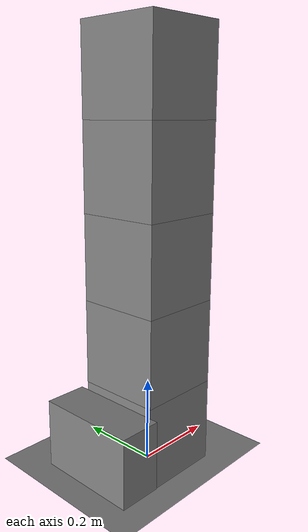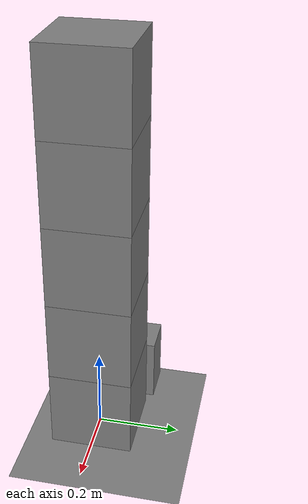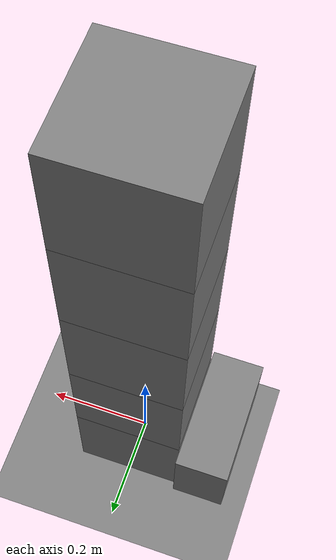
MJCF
<mujoco model="stack_fixture">
  <option timestep="0.002"/>
  <worldbody>
    <geom name="floor" type="plane" size="6 6 0.1" friction="0.6 0.005 0.0001"/>
    <body name="block1" pos="0 0 0.100">
      <freejoint/>
      <geom name="block1" type="box" size="0.1 0.1 0.1" mass="0.5" friction="0.6 0.005 0.0001"/>
    </body>
    <body name="block2" pos="0 0 0.300">
      <freejoint/>
      <geom name="block2" type="box" size="0.1 0.1 0.1" mass="0.5" friction="0.6 0.005 0.0001"/>
    </body>
    <body name="block3" pos="0 0 0.500">
      <freejoint/>
      <geom name="block3" type="box" size="0.1 0.1 0.1" mass="0.5" friction="0.6 0.005 0.0001"/>
    </body>
    <body name="block4" pos="0 0 0.700">
      <freejoint/>
      <geom name="block4" type="box" size="0.1 0.1 0.1" mass="0.5" friction="0.6 0.005 0.0001"/>
    </body>
    <body name="block5" pos="0 0 0.900">
      <freejoint/>
      <geom name="block5" type="box" size="0.1 0.1 0.1" mass="0.5" friction="0.6 0.005 0.0001"/>
    </body>
    <body name="pusher" pos="-0.1505 0 0.1">
      <joint name="pusher_slide" type="slide" axis="1 0 0" limited="true" range="0 0.6"/>
      <geom name="pusher" type="box" size="0.05 0.12 0.08" mass="1.0" friction="0.6 0.005 0.0001"/>
    </body>
  </worldbody>
  <actuator>
    <motor name="push" joint="pusher_slide" gear="1" ctrllimited="true" ctrlrange="0 40"/>
  </actuator>
  <keyframe>
    <key name="start" qpos="0 0 0.100 1 0 0 0  0 0 0.300 1 0 0 0  0 0 0.500 1 0 0 0  0 0 0.700 1 0 0 0  0 0 0.900 1 0 0 0  0" qvel="0 0 0 0 0 0  0 0 0 0 0 0  0 0 0 0 0 0  0 0 0 0 0 0  0 0 0 0 0 0  0" ctrl="30"/>
  </keyframe>
</mujoco>
